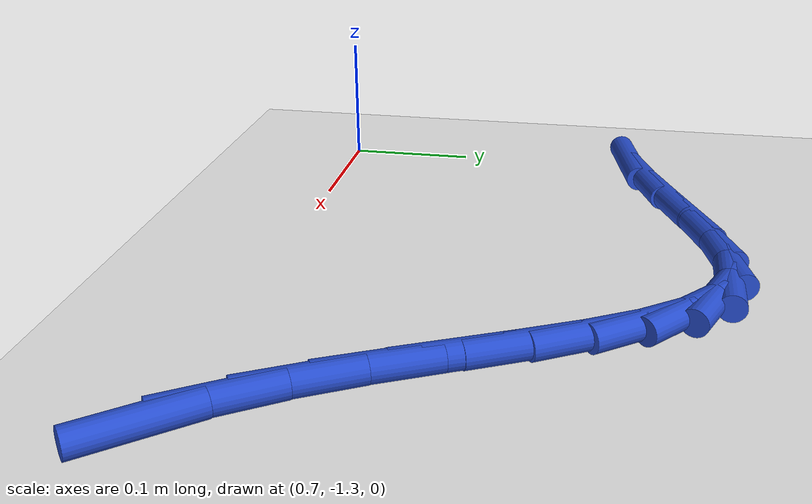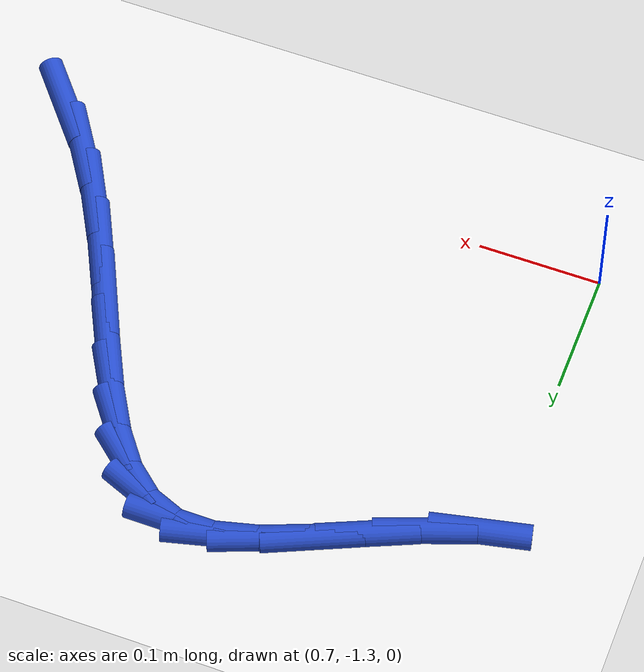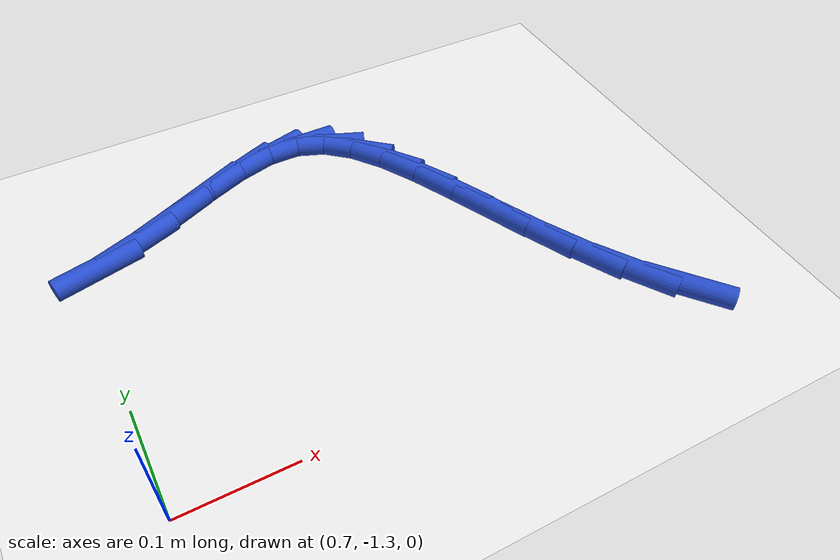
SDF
<sdf version="1.6">
 <world name="default">
  <model name="ground_plane">
   <static>1</static>
   <link name="link">
    <collision name="collision">
     <geometry><plane><normal>0 0 1</normal><size>100 100</size></plane></geometry>
     <surface><friction><ode><mu>100</mu><mu2>50</mu2></ode></friction></surface>
    </collision>
    <visual name="visual">
     <cast_shadows>0</cast_shadows>
     <geometry><plane><normal>0 0 1</normal><size>100 100</size></plane></geometry>
     <material>
      <script><uri>file://media/materials/scripts/gazebo.material</uri><name>Gazebo/WhiteGlow</name></script>
     </material>
    </visual>
   </link>
  </model>
  <model name="line">
   <link name="link_150">
    <pose>1.1580753556596286 -1.3056701758434033 0.01 0 1.57 -0.8784233725291893</pose>
    <collision name="collision">
     <geometry><cylinder><radius>0.01</radius><length>0.08</length></cylinder></geometry>
    </collision>
    <visual name="visual">
     <material>
      <script><name>Gazebo/Blue</name><uri>file://media/materials/scripts/gazebo.material</uri></script>
     </material>
     <geometry><cylinder><radius>0.01</radius><length>0.08</length></cylinder></geometry>
    </visual>
   </link>
   <link name="link_151">
    <pose>1.1285141490569444 -1.2700256328476984 0.01 0 1.57 -0.9940676089349875</pose>
    <collision name="collision">
     <geometry><cylinder><radius>0.01</radius><length>0.08</length></cylinder></geometry>
    </collision>
    <visual name="visual">
     <material>
      <script><name>Gazebo/Blue</name><uri>file://media/materials/scripts/gazebo.material</uri></script>
     </material>
     <geometry><cylinder><radius>0.01</radius><length>0.08</length></cylinder></geometry>
    </visual>
   </link>
   <link name="link_152">
    <pose>1.103000412962636 -1.2308040805270057 0.01 0 1.57 -1.0730826448723594</pose>
    <collision name="collision">
     <geometry><cylinder><radius>0.01</radius><length>0.08</length></cylinder></geometry>
    </collision>
    <visual name="visual">
     <material>
      <script><name>Gazebo/Blue</name><uri>file://media/materials/scripts/gazebo.material</uri></script>
     </material>
     <geometry><cylinder><radius>0.01</radius><length>0.08</length></cylinder></geometry>
    </visual>
   </link>
   <link name="link_153">
    <pose>1.080611696573483 -1.1895981720482856 0.01 0 1.57 -1.1190005545222388</pose>
    <collision name="collision">
     <geometry><cylinder><radius>0.01</radius><length>0.08</length></cylinder></geometry>
    </collision>
    <visual name="visual">
     <material>
      <script><name>Gazebo/Blue</name><uri>file://media/materials/scripts/gazebo.material</uri></script>
     </material>
     <geometry><cylinder><radius>0.01</radius><length>0.08</length></cylinder></geometry>
    </visual>
   </link>
   <link name="link_154">
    <pose>1.0604255490862642 -1.148000560578497 0.01 0 1.57 -1.1330668777749522</pose>
    <collision name="collision">
     <geometry><cylinder><radius>0.01</radius><length>0.08</length></cylinder></geometry>
    </collision>
    <visual name="visual">
     <material>
      <script><name>Gazebo/Blue</name><uri>file://media/materials/scripts/gazebo.material</uri></script>
     </material>
     <geometry><cylinder><radius>0.01</radius><length>0.08</length></cylinder></geometry>
    </visual>
   </link>
   <link name="link_155">
    <pose>1.0415195196977587 -1.1076038992846005 0.01 0 1.57 -1.1125493008191376</pose>
    <collision name="collision">
     <geometry><cylinder><radius>0.01</radius><length>0.08</length></cylinder></geometry>
    </collision>
    <visual name="visual">
     <material>
      <script><name>Gazebo/Blue</name><uri>file://media/materials/scripts/gazebo.material</uri></script>
     </material>
     <geometry><cylinder><radius>0.01</radius><length>0.08</length></cylinder></geometry>
    </visual>
   </link>
   <link name="link_156">
    <pose>1.0229711576047458 -1.0700008413335556 0.01 0 1.57 -1.0486570089939673</pose>
    <collision name="collision">
     <geometry><cylinder><radius>0.01</radius><length>0.08</length></cylinder></geometry>
    </collision>
    <visual name="visual">
     <material>
      <script><name>Gazebo/Blue</name><uri>file://media/materials/scripts/gazebo.material</uri></script>
     </material>
     <geometry><cylinder><radius>0.01</radius><length>0.08</length></cylinder></geometry>
    </visual>
   </link>
   <link name="link_157">
    <pose>1.0038580120040037 -1.0367840398923212 0.01 0 1.57 -0.9232669326190649</pose>
    <collision name="collision">
     <geometry><cylinder><radius>0.01</radius><length>0.08</length></cylinder></geometry>
    </collision>
    <visual name="visual">
     <material>
      <script><name>Gazebo/Blue</name><uri>file://media/materials/scripts/gazebo.material</uri></script>
     </material>
     <geometry><cylinder><radius>0.01</radius><length>0.08</length></cylinder></geometry>
    </visual>
   </link>
   <link name="link_158">
    <pose>0.9832576320923117 -1.0095461481278576 0.01 0 1.57 -0.7072069519777435</pose>
    <collision name="collision">
     <geometry><cylinder><radius>0.01</radius><length>0.08</length></cylinder></geometry>
    </collision>
    <visual name="visual">
     <material>
      <script><name>Gazebo/Blue</name><uri>file://media/materials/scripts/gazebo.material</uri></script>
     </material>
     <geometry><cylinder><radius>0.01</radius><length>0.08</length></cylinder></geometry>
    </visual>
   </link>
   <link name="link_159">
    <pose>0.9602475670664495 -0.9898798192071242 0.01 0 1.57 -0.3793680671966001</pose>
    <collision name="collision">
     <geometry><cylinder><radius>0.01</radius><length>0.08</length></cylinder></geometry>
    </collision>
    <visual name="visual">
     <material>
      <script><name>Gazebo/Blue</name><uri>file://media/materials/scripts/gazebo.material</uri></script>
     </material>
     <geometry><cylinder><radius>0.01</radius><length>0.08</length></cylinder></geometry>
    </visual>
   </link>
   <link name="link_160">
    <pose>0.9339053661231954 -0.9793777062970808 0.01 0 1.57 -0.0026124661130292495</pose>
    <collision name="collision">
     <geometry><cylinder><radius>0.01</radius><length>0.08</length></cylinder></geometry>
    </collision>
    <visual name="visual">
     <material>
      <script><name>Gazebo/Blue</name><uri>file://media/materials/scripts/gazebo.material</uri></script>
     </material>
     <geometry><cylinder><radius>0.01</radius><length>0.08</length></cylinder></geometry>
    </visual>
   </link>
   <link name="link_161">
    <pose>0.903446381941047 -0.9792981330520389 0.01 0 1.57 0.2513037278997786</pose>
    <collision name="collision">
     <geometry><cylinder><radius>0.01</radius><length>0.08</length></cylinder></geometry>
    </collision>
    <visual name="visual">
     <material>
      <script><name>Gazebo/Blue</name><uri>file://media/materials/scripts/gazebo.material</uri></script>
     </material>
     <geometry><cylinder><radius>0.01</radius><length>0.08</length></cylinder></geometry>
    </visual>
   </link>
   <link name="link_162">
    <pose>0.8692490398030112 -0.9880776548212513 0.01 0 1.57 0.3774577005876095</pose>
    <collision name="collision">
     <geometry><cylinder><radius>0.01</radius><length>0.08</length></cylinder></geometry>
    </collision>
    <visual name="visual">
     <material>
      <script><name>Gazebo/Blue</name><uri>file://media/materials/scripts/gazebo.material</uri></script>
     </material>
     <geometry><cylinder><radius>0.01</radius><length>0.08</length></cylinder></geometry>
    </visual>
   </link>
   <link name="link_163">
    <pose>0.8322755662543969 -1.0027364477081415 0.01 0 1.57 0.4248941925958964</pose>
    <collision name="collision">
     <geometry><cylinder><radius>0.01</radius><length>0.08</length></cylinder></geometry>
    </collision>
    <visual name="visual">
     <material>
      <script><name>Gazebo/Blue</name><uri>file://media/materials/scripts/gazebo.material</uri></script>
     </material>
     <geometry><cylinder><radius>0.01</radius><length>0.08</length></cylinder></geometry>
    </visual>
   </link>
   <link name="link_164">
    <pose>0.7934925809066176 -1.020284029655459 0.01 0 1.57 0.41472891211892515</pose>
    <collision name="collision">
     <geometry><cylinder><radius>0.01</radius><length>0.08</length></cylinder></geometry>
    </collision>
    <visual name="visual">
     <material>
      <script><name>Gazebo/Blue</name><uri>file://media/materials/scripts/gazebo.material</uri></script>
     </material>
     <geometry><cylinder><radius>0.01</radius><length>0.08</length></cylinder></geometry>
    </visual>
   </link>
   <link name="link_165">
    <pose>0.7538667033710865 -1.0377299186059532 0.01 0 1.57 0.3485316493089961</pose>
    <collision name="collision">
     <geometry><cylinder><radius>0.01</radius><length>0.08</length></cylinder></geometry>
    </collision>
    <visual name="visual">
     <material>
      <script><name>Gazebo/Blue</name><uri>file://media/materials/scripts/gazebo.material</uri></script>
     </material>
     <geometry><cylinder><radius>0.01</radius><length>0.08</length></cylinder></geometry>
    </visual>
   </link>
   <link name="link_166">
    <pose>0.7143645532592169 -1.0520836325023741 0.01 0 1.57 0.21689491802059502</pose>
    <collision name="collision">
     <geometry><cylinder><radius>0.01</radius><length>0.08</length></cylinder></geometry>
    </collision>
    <visual name="visual">
     <material>
      <script><name>Gazebo/Blue</name><uri>file://media/materials/scripts/gazebo.material</uri></script>
     </material>
     <geometry><cylinder><radius>0.01</radius><length>0.08</length></cylinder></geometry>
    </visual>
   </link>
  </model>
 </world>
</sdf>
